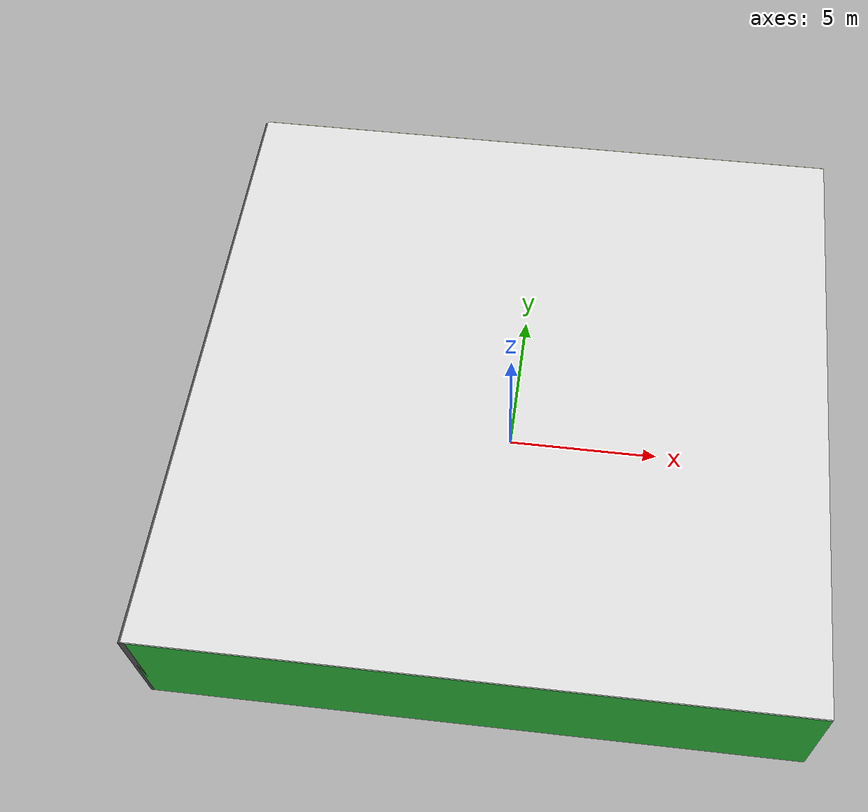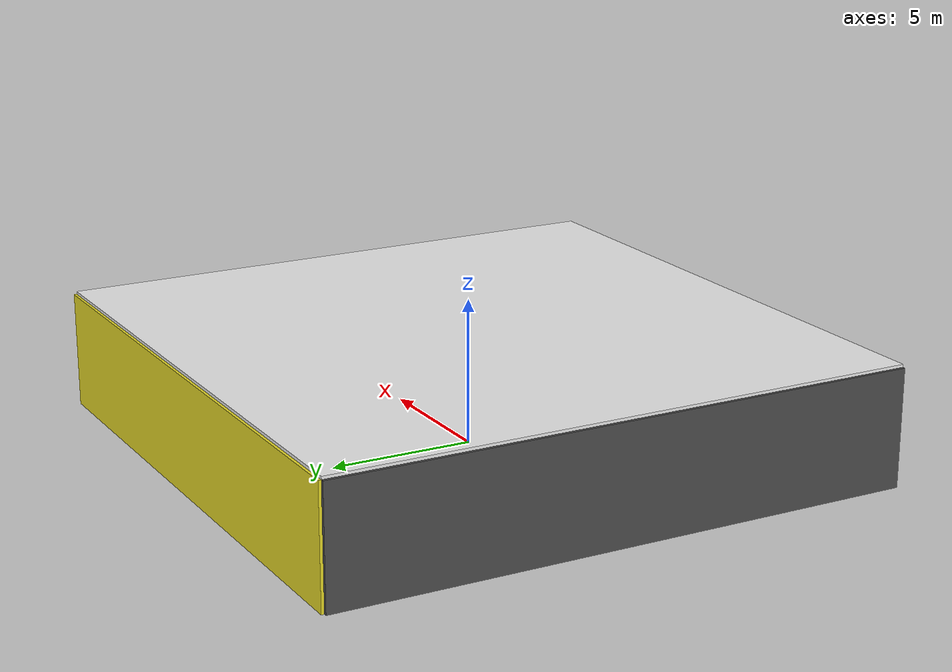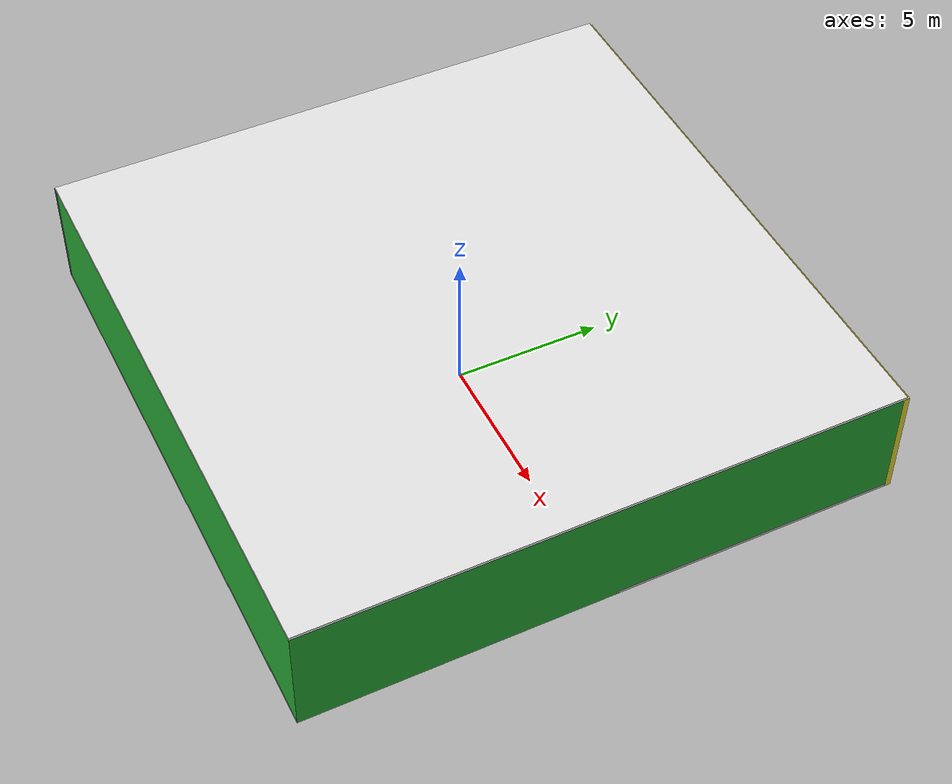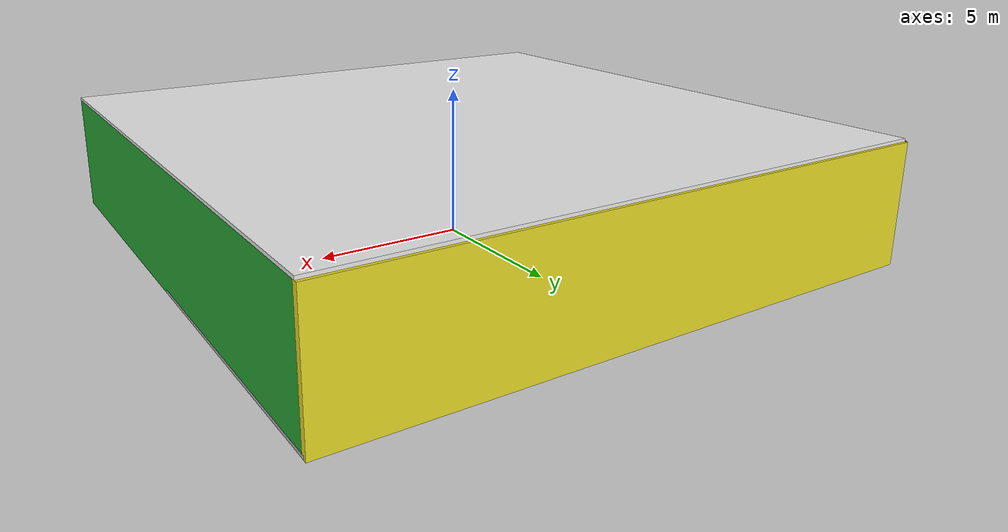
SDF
<sdf version="1.4">
 <world name="default">
  <physics type="ode">
   <max_step_size>0.001</max_step_size>
   <real_time_factor>1</real_time_factor>
   <real_time_update_rate>1000</real_time_update_rate>
   <gravity>0 0 -9.8</gravity>
  </physics>
  <scene><ambient>0.4 0.4 0.4 1</ambient><background>0.7 0.7 0.7 1</background><shadows>1</shadows></scene>
  <model name="Surrounding">
   <static>1</static>
   <link name="Ceiling">
    <collision name="Ceiling_Collision"><geometry><box><size>20 20 0.1</size></box></geometry></collision>
    <visual name="Ceiling_Visual">
     <geometry><box><size>20 20 0.1</size></box></geometry>
     <material>
      <script><uri>file://media/materials/scripts/gazebo.material</uri><name>Gazebo/WhiteGlow</name></script>
     </material>
    </visual>
    <pose>0 0 4.05 0 0 0</pose>
   </link>
   <link name="Wall_South">
    <collision name="Wall_South_Collision">
     <geometry><box><size>20 0 4</size></box></geometry>
     <pose>0 0 2 0 -0 0</pose>
    </collision>
    <visual name="Wall_South_Visual">
     <pose>0 0 2 0 -0 0</pose>
     <geometry><box><size>20 0 4</size></box></geometry>
     <material>
      <script><uri>file://media/materials/scripts/gazebo.material</uri><name>Gazebo/Green</name></script>
     </material>
    </visual>
    <velocity_decay><linear>0</linear><angular>0</angular></velocity_decay>
    <pose>0 -10 0 0 -0 0</pose>
   </link>
   <link name="Wall_East">
    <collision name="Wall_21_Collision">
     <geometry><box><size>20 0 4</size></box></geometry>
     <pose>0 0 2 0 -0 0</pose>
    </collision>
    <visual name="Wall_21_Visual">
     <pose>0 0 2 0 -0 0</pose>
     <geometry><box><size>20 0 4</size></box></geometry>
     <material>
      <script><uri>file://media/materials/scripts/gazebo.material</uri><name>Gazebo/GreenGlow</name></script>
     </material>
    </visual>
    <velocity_decay><linear>0</linear><angular>0</angular></velocity_decay>
    <pose>10 0 0 0 -0 1.5708</pose>
   </link>
   <link name="Wall_North">
    <collision name="Wall_22_Collision">
     <geometry><box><size>20 0.2 4</size></box></geometry>
     <pose>0 0 2 0 -0 0</pose>
    </collision>
    <visual name="Wall_22_Visual">
     <pose>0 0 2 0 -0 0</pose>
     <geometry><box><size>20 0.2 4</size></box></geometry>
     <material>
      <script><uri>file://media/materials/scripts/gazebo.material</uri><name>Gazebo/YellowGlow</name></script>
     </material>
    </visual>
    <velocity_decay><linear>0</linear><angular>0</angular></velocity_decay>
    <pose>0 10 0 0 -0 0</pose>
   </link>
   <link name="Wall_West">
    <collision name="Wall_23_Collision">
     <geometry><box><size>20 0.2 4</size></box></geometry>
     <pose>0 0 2 0 -0 0</pose>
    </collision>
    <visual name="Wall_23_Visual">
     <pose>0 0 2 0 -0 0</pose>
     <geometry><box><size>20 0.2 4</size></box></geometry>
     <material>
      <script><uri>file://media/materials/scripts/gazebo.material</uri><name>Gazebo/DarkGrey</name></script>
     </material>
    </visual>
    <velocity_decay><linear>0</linear><angular>0</angular></velocity_decay>
    <pose>-10 0 0 0 0 -1.5708</pose>
   </link>
   <link name="Ground_link">
    <collision name="collision">
     <pose>0 0 .05 0 -0 0</pose>
     <geometry><box><size>20 20 0.1</size></box></geometry>
    </collision>
    <visual name="visual">
     <pose>0 0 .05 0 -0 0</pose>
     <geometry><box><size>20 20 0.1</size></box></geometry>
     <material>
      <script><uri>file://media/materials/scripts/gazebo.material</uri><name>Gazebo/Pioneer2Body</name></script>
     </material>
    </visual>
   </link>
   <static>1</static>
  </model>
  <spherical_coordinates>
   <surface_model>EARTH_WGS84</surface_model>
   <latitude_deg>0</latitude_deg>
   <longitude_deg>0</longitude_deg>
   <elevation>0</elevation>
   <heading_deg>0</heading_deg>
  </spherical_coordinates>
  <light name="lightball_0" type="diffuse">
   <diffuse>0.8 0.8 0.8 1</diffuse>
   <specular>0.2 0.2 0.2 1</specular>
   <attenuation>
    <range>100</range>
    <constant>0.7</constant>
    <linear>0.01</linear>
    <quadratic>0.001</quadratic>
   </attenuation>
   <direction>-0.5 0.1 -0.9</direction>
   <pose>2.31365940928 -8.72014542212 0.627243291227 0 0 0</pose>
  </light>
  <light name="lightball_1" type="diffuse">
   <diffuse>0.8 0.8 0.8 1</diffuse>
   <specular>0.2 0.2 0.2 1</specular>
   <attenuation>
    <range>100</range>
    <constant>0.7</constant>
    <linear>0.01</linear>
    <quadratic>0.001</quadratic>
   </attenuation>
   <direction>-0.5 0.1 -0.9</direction>
   <pose>-4.69649218102 2.44699889143 2.35698613837 0 0 0</pose>
  </light>
  <light name="lightball_2" type="diffuse">
   <diffuse>0.8 0.8 0.8 1</diffuse>
   <specular>0.2 0.2 0.2 1</specular>
   <attenuation>
    <range>100</range>
    <constant>0.7</constant>
    <linear>0.01</linear>
    <quadratic>0.001</quadratic>
   </attenuation>
   <direction>-0.5 0.1 -0.9</direction>
   <pose>8.55150470316 -5.28122597099 3.60318676084 0 0 0</pose>
  </light>
  <light name="lightball_3" type="diffuse">
   <diffuse>0.8 0.8 0.8 1</diffuse>
   <specular>0.2 0.2 0.2 1</specular>
   <attenuation>
    <range>100</range>
    <constant>0.7</constant>
    <linear>0.01</linear>
    <quadratic>0.001</quadratic>
   </attenuation>
   <direction>-0.5 0.1 -0.9</direction>
   <pose>-6.05496152943 -7.53639064926 2.29106985565 0 0 0</pose>
  </light>
  <include><uri>model://cabinet</uri><pose>-7.41331104156 -3.97469585158 0 0 0 2.92990857126</pose></include>
  <include>
   <uri>model://textured_shapes</uri>
   <pose>-1.22112614784 4.32397797888 0 0 0 1.56298090325</pose>
  </include>
  <include><uri>model://cabinet</uri><pose>4.73861819875 1.22298784182 0 0 0 1.23033343839</pose></include>
 </world>
</sdf>

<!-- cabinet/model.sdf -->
<sdf version="1.5">
  <model name="cabinet">
    <static>true</static>
    <link name="cabinet_bottom_plate">
      <inertial>
        <pose>0 0 -1 0 0 0</pose>
        <inertia>
          <ixx>2.050000</ixx>
          <ixy>0</ixy>
          <ixz>0</ixz>
          <iyy>2.050000</iyy>
          <iyz>0</iyz>
          <izz>2.050000</izz>
        </inertia>
        <mass>25.000000</mass>
      </inertial>
      <collision name="cabinet_bottom_plate_geom">
        <pose>0 0 0.010000 0 0 0</pose>
        <geometry>
          <box>
            <size>0.450000 0.450000 0.020000</size>
          </box>
        </geometry>
      </collision>
      <visual name="cabinet_bottom_plate_geom_visual">
        <pose>0 0 0.010000 0 0 0</pose>
        <geometry>
          <box>
            <size>0.450000 0.450000 0.020000</size>
          </box>
        </geometry>
        <material>
          <script>
            <uri>model://media/materials/scripts/gazebo.material</uri>
            <name>Gazebo/Wood</name>
          </script>
        </material>
      </visual>
      <collision name="cabinet_bottom_plate_geom_cabinet_back_plate">
        <pose>0.235000 0 0.510000 0 0 0</pose>
        <geometry>
          <box>
            <size>0.020000 0.450000 1.020000</size>
          </box>
        </geometry>
      </collision>
      <visual name="cabinet_bottom_plate_geom_cabinet_back_plate_visual">
        <pose>0.235000 0 0.510000 0 0 0</pose>
        <geometry>
          <box>
            <size>0.020000 0.450000 1.020000</size>
          </box>
        </geometry>
        <material>
          <script>
            <uri>model://media/materials/scripts/gazebo.material</uri>
            <name>Gazebo/Wood</name>
          </script>
        </material>
      </visual>
      <collision name="cabinet_bottom_plate_geom_cabinet_left_plate">
        <pose>0 0.235000 0.510000 0 0 0</pose>
        <geometry>
          <box>
            <size>0.450000 0.020000 1.020000</size>
          </box>
        </geometry>
      </collision>
      <visual name="cabinet_bottom_plate_geom_cabinet_left_plate_visual">
        <pose>0 0.235000 0.510000 0 0 0</pose>
        <geometry>
          <box>
            <size>0.450000 0.020000 1.020000</size>
          </box>
        </geometry>
        <material>
          <script>
            <uri>model://media/materials/scripts/gazebo.material</uri>
            <name>Gazebo/Wood</name>
          </script>
        </material>
      </visual>
      <collision name="cabinet_bottom_plate_geom_cabinet_middle_plate">
        <pose>0 0 0.510000 0 0 0</pose>
        <geometry>
          <box>
            <size>0.450000 0.450000 0.020000</size>
          </box>
        </geometry>
      </collision>
      <visual name="cabinet_bottom_plate_geom_cabinet_middle_plate_visual">
        <pose>0 0 0.510000 0 0 0</pose>
        <geometry>
          <box>
            <size>0.450000 0.450000 0.020000</size>
          </box>
        </geometry>
        <material>
          <script>
            <uri>model://media/materials/scripts/gazebo.material</uri>
            <name>Gazebo/Wood</name>
          </script>
        </material>
      </visual>
      <collision name="cabinet_bottom_plate_geom_cabinet_right_plate">
        <pose>0 -0.235000 0.510000 0 0 0</pose>
        <geometry>
          <box>
            <size>0.450000 0.020000 1.020000</size>
          </box>
        </geometry>
      </collision>
      <visual name="cabinet_bottom_plate_geom_cabinet_right_plate_visual">
        <pose>0 -0.235000 0.510000 0 0 0</pose>
        <geometry>
          <box>
            <size>0.450000 0.020000 1.020000</size>
          </box>
        </geometry>
        <material>
          <script>
            <uri>model://media/materials/scripts/gazebo.material</uri>
            <name>Gazebo/Wood</name>
          </script>
        </material>
      </visual>
      <collision name="cabinet_bottom_plate_geom_cabinet_top_plate">
        <pose>0 0 1.010000 0 0 0</pose>
        <geometry>
          <box>
            <size>0.450000 0.450000 0.020000</size>
          </box>
        </geometry>
      </collision>
      <visual name="cabinet_bottom_plate_geom_cabinet_top_plate_visual">
        <pose>0 0 1.010000 0 0 0</pose>
        <geometry>
          <box>
            <size>0.450000 0.450000 0.020000</size>
          </box>
        </geometry>
        <material>
          <script>
            <uri>model://media/materials/scripts/gazebo.material</uri>
            <name>Gazebo/Wood</name>
          </script>
        </material>
      </visual>
    </link>
  </model>
</sdf>

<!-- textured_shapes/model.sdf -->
<sdf version="1.6">
  <model name="textured_shapes">
    <pose>0 0 0.5 0 0 0</pose>
    <link name="box">
      <pose>0 -1.5 0 0 0 0</pose>
      <collision name="collision">
        <geometry>
          <box>
            <size>1 1 1</size>
          </box>
        </geometry>
      </collision>
      <visual name="visual">
        <geometry>
          <box>
            <size>1 1 1</size>
          </box>
        </geometry>
        <material>
          <script>
            <uri>model://../model_source/models/textured_shapes/materials/scripts</uri>
            <uri>model://../model_source/models/textured_shapes/materials/textures</uri>
            <name>TexturedShape/Squares</name>
          </script>
        </material>
      </visual>
    </link>
    <link name="sphere">
      <collision name="collision">
        <geometry>
          <sphere>
            <radius>0.5</radius>
          </sphere>
        </geometry>
      </collision>
      <visual name="visual">
        <geometry>
          <sphere>
            <radius>0.5</radius>
          </sphere>
        </geometry>
        <material>
          <script>
            <uri>model://../model_source/models/textured_shapes/materials/scripts</uri>
            <uri>model://../model_source/models/textured_shapes/materials/textures</uri>
            <name>TexturedShape/Squares</name>
          </script>
        </material>
      </visual>
    </link>
    <link name="cylinder">
      <pose>0 1.5 0 0 0 0</pose>
      <collision name="collision">
        <geometry>
          <cylinder>
            <radius>0.5</radius>
            <length>1</length>
          </cylinder>
        </geometry>
      </collision>
      <visual name="visual">
        <geometry>
          <cylinder>
            <radius>0.5</radius>
            <length>1</length>
          </cylinder>
        </geometry>
        <material>
          <script>
            <uri>model://../model_source/models/textured_shapes/materials/scripts</uri>
            <uri>model://../model_source/models/textured_shapes/materials/textures</uri>
            <name>TexturedShape/Squares</name>
          </script>
        </material>
      </visual>
    </link>
  </model>
</sdf>
